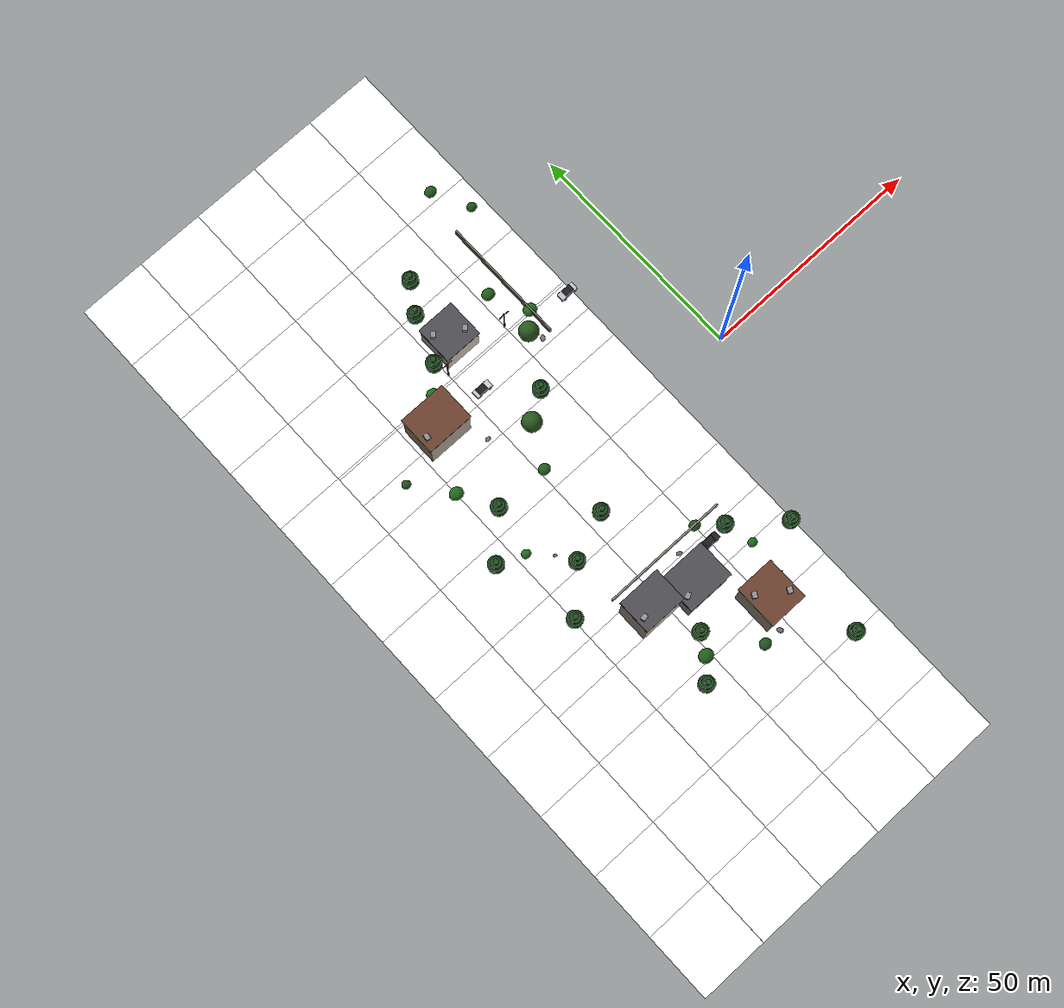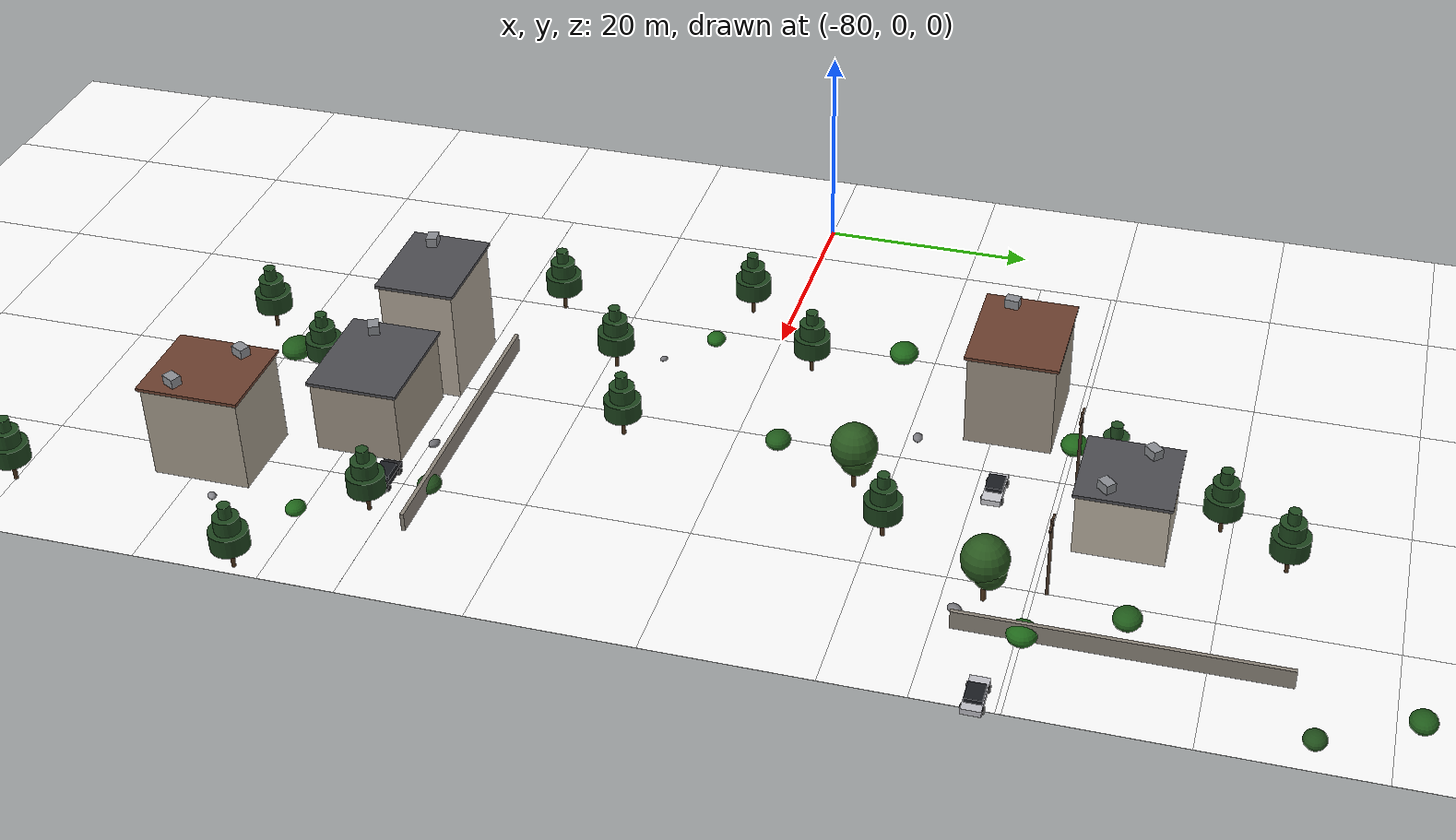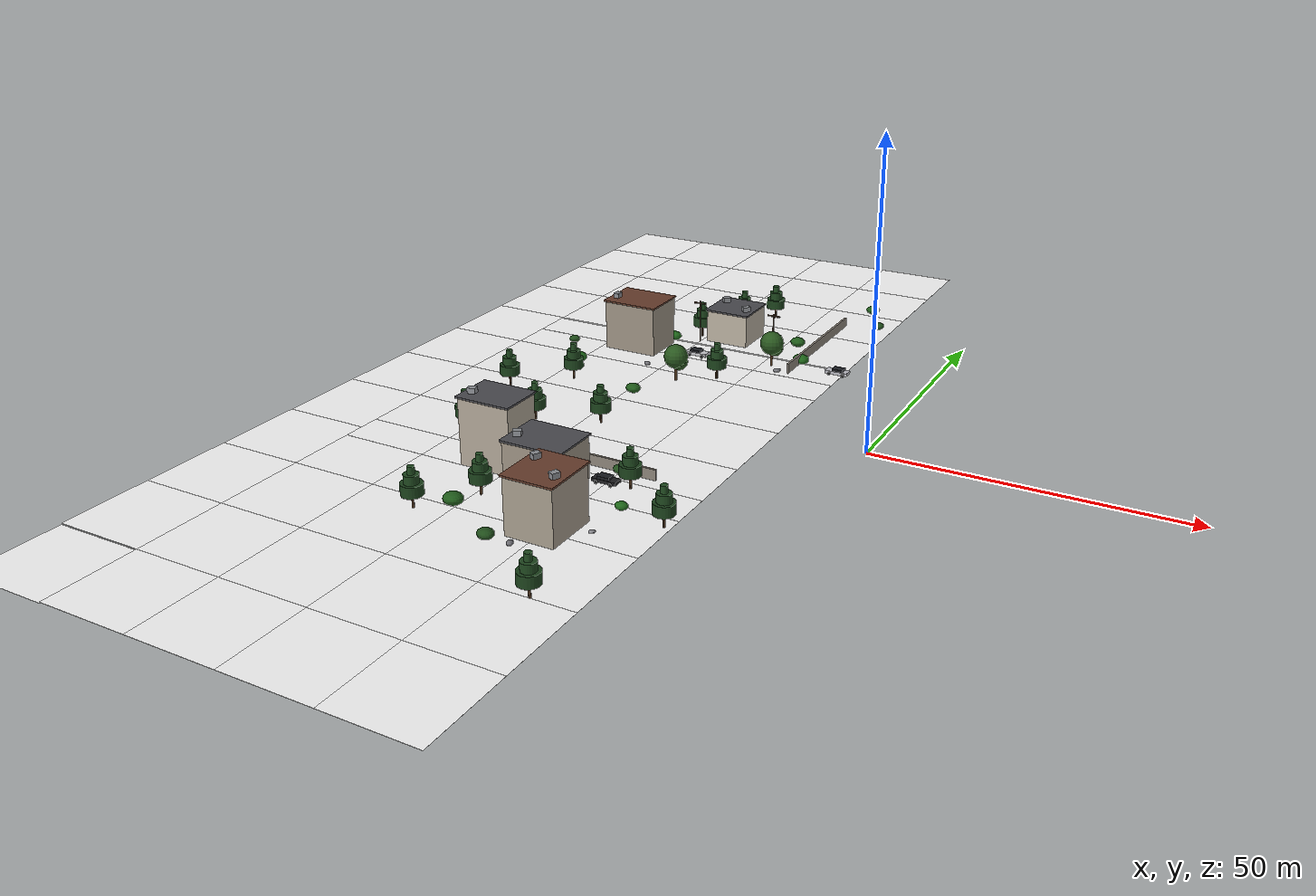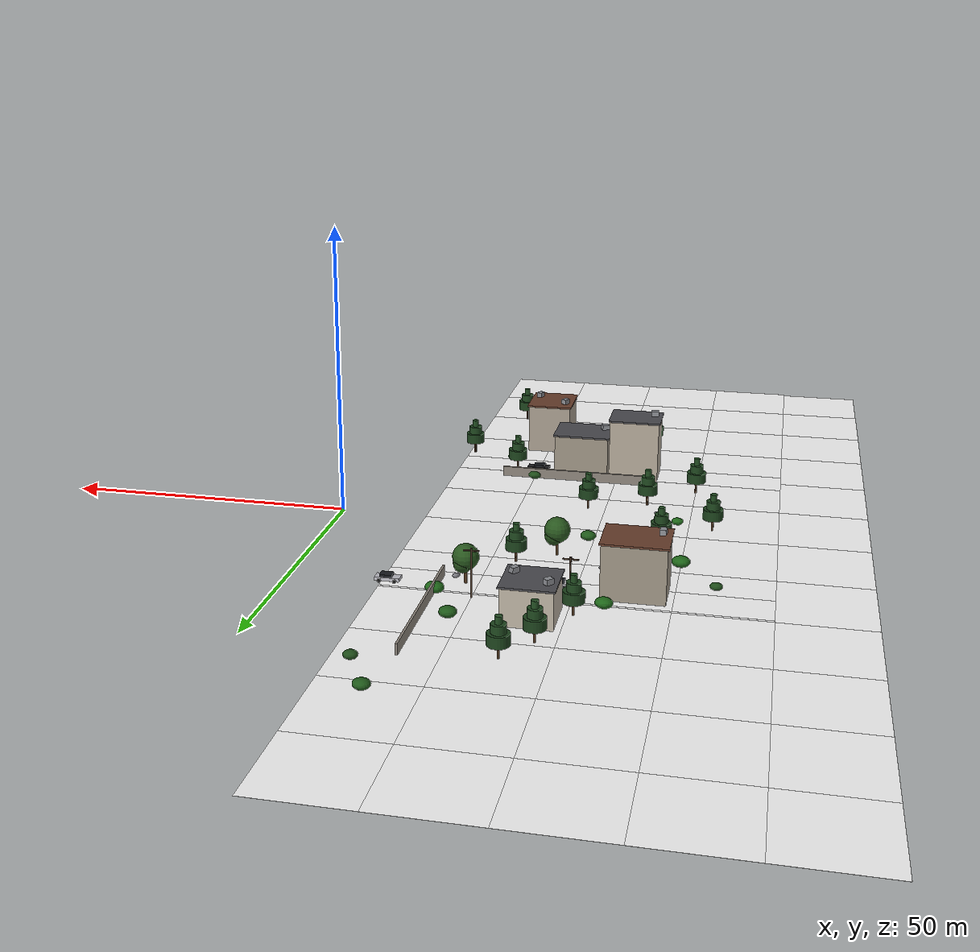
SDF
<sdf version="1.9">
 <world name="iris_runway">
  <model name="ground">
   <static>true</static>
   <link name="link">
    <collision name="c">
     <geometry><plane><normal>0 0 1</normal><size>2000 2000</size></plane></geometry>
    </collision>
   </link>
  </model>
  <include>
   <name>g_0_0</name>
   <pose degrees="true">-82.5 -82.5 0.01 0 0 0</pose>
   <uri>model://grass_tile_worn</uri>
  </include>
  <include>
   <name>g_0_1</name>
   <pose degrees="true">-82.5 -67.5 0.01 0 0 90</pose>
   <uri>model://grass_tile</uri>
  </include>
  <include>
   <name>g_0_2</name>
   <pose degrees="true">-82.5 -52.5 0.01 0 0 270</pose>
   <uri>model://grass_tile</uri>
  </include>
  <include>
   <name>g_0_3</name>
   <pose degrees="true">-82.5 -37.5 0.01 0 0 90</pose>
   <uri>model://grass_tile</uri>
  </include>
  <include>
   <name>g_0_4</name>
   <pose degrees="true">-82.5 -22.5 0.01 0 0 270</pose>
   <uri>model://grass_tile</uri>
  </include>
  <include>
   <name>g_0_5</name>
   <pose degrees="true">-82.5 -7.5 0.01 0 0 90</pose>
   <uri>model://grass_tile</uri>
  </include>
  <include>
   <name>g_0_6</name>
   <pose degrees="true">-82.5 7.5 0.01 0 0 270</pose>
   <uri>model://grass_tile</uri>
  </include>
  <include>
   <name>g_0_7</name>
   <pose degrees="true">-82.5 22.5 0.01 0 0 90</pose>
   <uri>model://grass_tile_worn</uri>
  </include>
  <include>
   <name>g_0_8</name>
   <pose degrees="true">-82.5 37.5 0.01 0 0 270</pose>
   <uri>model://grass_tile</uri>
  </include>
  <include>
   <name>g_0_9</name>
   <pose degrees="true">-82.5 52.5 0.01 0 0 90</pose>
   <uri>model://grass_tile</uri>
  </include>
  <include>
   <name>g_0_10</name>
   <pose degrees="true">-82.5 67.5 0.01 0 0 270</pose>
   <uri>model://grass_tile</uri>
  </include>
  <include>
   <name>g_0_11</name>
   <pose degrees="true">-82.5 82.5 0.01 0 0 90</pose>
   <uri>model://grass_tile</uri>
  </include>
  <include>
   <name>g_1_0</name>
   <pose degrees="true">-67.5 -82.5 0.01 0 0 90</pose>
   <uri>model://grass_tile</uri>
  </include>
  <include>
   <name>g_1_1</name>
   <pose degrees="true">-67.5 -67.5 0.01 0 0 0</pose>
   <uri>model://grass_tile</uri>
  </include>
  <include>
   <name>g_1_2</name>
   <pose degrees="true">-67.5 -52.5 0.01 0 0 180</pose>
   <uri>model://grass_tile</uri>
  </include>
  <include>
   <name>g_1_3</name>
   <pose degrees="true">-67.5 -37.5 0.01 0 0 0</pose>
   <uri>model://grass_tile_worn</uri>
  </include>
  <include>
   <name>g_1_4</name>
   <pose degrees="true">-67.5 -22.5 0.01 0 0 180</pose>
   <uri>model://grass_tile_worn</uri>
  </include>
  <include>
   <name>g_1_5</name>
   <pose degrees="true">-67.5 -7.5 0.01 0 0 0</pose>
   <uri>model://grass_tile_worn</uri>
  </include>
  <include>
   <name>g_1_6</name>
   <pose degrees="true">-67.5 7.5 0.01 0 0 180</pose>
   <uri>model://grass_tile</uri>
  </include>
  <include>
   <name>g_1_7</name>
   <pose degrees="true">-67.5 22.5 0.01 0 0 0</pose>
   <uri>model://grass_tile</uri>
  </include>
  <include>
   <name>g_1_8</name>
   <pose degrees="true">-67.5 37.5 0.01 0 0 180</pose>
   <uri>model://grass_tile</uri>
  </include>
  <include>
   <name>g_1_9</name>
   <pose degrees="true">-67.5 52.5 0.01 0 0 0</pose>
   <uri>model://grass_tile_worn</uri>
  </include>
  <include>
   <name>g_1_10</name>
   <pose degrees="true">-67.5 67.5 0.01 0 0 180</pose>
   <uri>model://grass_tile</uri>
  </include>
  <include>
   <name>g_1_11</name>
   <pose degrees="true">-67.5 82.5 0.01 0 0 0</pose>
   <uri>model://grass_tile</uri>
  </include>
  <include>
   <name>g_2_0</name>
   <pose degrees="true">-52.5 -82.5 0.01 0 0 270</pose>
   <uri>model://grass_tile</uri>
  </include>
  <include>
   <name>g_2_1</name>
   <pose degrees="true">-52.5 -67.5 0.01 0 0 180</pose>
   <uri>model://grass_tile</uri>
  </include>
  <include>
   <name>g_2_2</name>
   <pose degrees="true">-52.5 -52.5 0.01 0 0 0</pose>
   <uri>model://grass_tile</uri>
  </include>
  <include>
   <name>g_2_3</name>
   <pose degrees="true">-52.5 -37.5 0.01 0 0 180</pose>
   <uri>model://grass_tile</uri>
  </include>
  <include>
   <name>g_2_4</name>
   <pose degrees="true">-52.5 -22.5 0.01 0 0 0</pose>
   <uri>model://grass_tile</uri>
  </include>
  <include>
   <name>g_2_5</name>
   <pose degrees="true">-52.5 -7.5 0.01 0 0 180</pose>
   <uri>model://grass_tile</uri>
  </include>
  <include>
   <name>g_2_6</name>
   <pose degrees="true">-52.5 7.5 0.01 0 0 0</pose>
   <uri>model://grass_tile_worn</uri>
  </include>
  <include>
   <name>g_2_7</name>
   <pose degrees="true">-52.5 22.5 0.01 0 0 180</pose>
   <uri>model://grass_tile</uri>
  </include>
  <include>
   <name>g_2_8</name>
   <pose degrees="true">-52.5 37.5 0.01 0 0 0</pose>
   <uri>model://grass_tile_worn</uri>
  </include>
  <include>
   <name>g_2_9</name>
   <pose degrees="true">-52.5 52.5 0.01 0 0 180</pose>
   <uri>model://grass_tile</uri>
  </include>
  <include>
   <name>g_2_10</name>
   <pose degrees="true">-52.5 67.5 0.01 0 0 0</pose>
   <uri>model://grass_tile_worn</uri>
  </include>
  <include>
   <name>g_2_11</name>
   <pose degrees="true">-52.5 82.5 0.01 0 0 180</pose>
   <uri>model://grass_tile</uri>
  </include>
  <include>
   <name>g_3_0</name>
   <pose degrees="true">-37.5 -82.5 0.01 0 0 90</pose>
   <uri>model://grass_tile</uri>
  </include>
  <include>
   <name>g_3_1</name>
   <pose degrees="true">-37.5 -67.5 0.01 0 0 0</pose>
   <uri>model://grass_tile</uri>
  </include>
  <include>
   <name>g_3_2</name>
   <pose degrees="true">-37.5 -52.5 0.01 0 0 180</pose>
   <uri>model://grass_tile</uri>
  </include>
  <include>
   <name>g_3_3</name>
   <pose degrees="true">-37.5 -37.5 0.01 0 0 0</pose>
   <uri>model://grass_tile</uri>
  </include>
  <include>
   <name>g_3_4</name>
   <pose degrees="true">-37.5 -22.5 0.01 0 0 180</pose>
   <uri>model://grass_tile</uri>
  </include>
  <include>
   <name>g_3_5</name>
   <pose degrees="true">-37.5 -7.5 0.01 0 0 0</pose>
   <uri>model://grass_tile</uri>
  </include>
  <include>
   <name>g_3_6</name>
   <pose degrees="true">-37.5 7.5 0.01 0 0 180</pose>
   <uri>model://grass_tile</uri>
  </include>
  <include>
   <name>g_3_7</name>
   <pose degrees="true">-37.5 22.5 0.01 0 0 0</pose>
   <uri>model://grass_tile_worn</uri>
  </include>
  <include>
   <name>g_3_8</name>
   <pose degrees="true">-37.5 37.5 0.01 0 0 180</pose>
   <uri>model://grass_tile</uri>
  </include>
  <include>
   <name>g_3_9</name>
   <pose degrees="true">-37.5 52.5 0.01 0 0 0</pose>
   <uri>model://grass_tile</uri>
  </include>
  <include>
   <name>g_3_10</name>
   <pose degrees="true">-37.5 67.5 0.01 0 0 180</pose>
   <uri>model://grass_tile</uri>
  </include>
  <include>
   <name>g_3_11</name>
   <pose degrees="true">-37.5 82.5 0.01 0 0 0</pose>
   <uri>model://grass_tile</uri>
  </include>
  <include>
   <name>g_4_0</name>
   <pose degrees="true">-22.5 -82.5 0.01 0 0 270</pose>
   <uri>model://grass_tile</uri>
  </include>
  <include>
   <name>g_4_1</name>
   <pose degrees="true">-22.5 -67.5 0.01 0 0 180</pose>
   <uri>model://grass_tile</uri>
  </include>
  <include>
   <name>g_4_2</name>
   <pose degrees="true">-22.5 -52.5 0.01 0 0 0</pose>
   <uri>model://grass_tile</uri>
  </include>
  <include>
   <name>g_4_3</name>
   <pose degrees="true">-22.5 -37.5 0.01 0 0 180</pose>
   <uri>model://grass_tile</uri>
  </include>
  <include>
   <name>g_4_4</name>
   <pose degrees="true">-22.5 -22.5 0.01 0 0 0</pose>
   <uri>model://grass_tile</uri>
  </include>
  <include>
   <name>g_4_5</name>
   <pose degrees="true">-22.5 -7.5 0.01 0 0 180</pose>
   <uri>model://grass_tile</uri>
  </include>
  <include>
   <name>g_4_6</name>
   <pose degrees="true">-22.5 7.5 0.01 0 0 0</pose>
   <uri>model://grass_tile</uri>
  </include>
  <include>
   <name>g_4_7</name>
   <pose degrees="true">-22.5 22.5 0.01 0 0 180</pose>
   <uri>model://grass_tile</uri>
  </include>
  <include>
   <name>g_4_8</name>
   <pose degrees="true">-22.5 37.5 0.01 0 0 0</pose>
   <uri>model://grass_tile</uri>
  </include>
  <include>
   <name>g_4_9</name>
   <pose degrees="true">-22.5 52.5 0.01 0 0 180</pose>
   <uri>model://grass_tile</uri>
  </include>
  <include>
   <name>g_4_10</name>
   <pose degrees="true">-22.5 67.5 0.01 0 0 0</pose>
   <uri>model://grass_tile</uri>
  </include>
  <include>
   <name>g_4_11</name>
   <pose degrees="true">-22.5 82.5 0.01 0 0 180</pose>
   <uri>model://grass_tile</uri>
  </include>
  <include><name>tree_2</name><pose>-28 26 0 0 0 1.4</pose><uri>model://tree_oak</uri></include>
  <include><name>tree_3</name><pose>-26 -28 0 0 0 2.1</pose><uri>model://tree_pine</uri></include>
  <include><name>tree_6</name><pose>-40 12 0 0 0 1.1</pose><uri>model://tree_oak</uri></include>
  <include><name>tree_7</name><pose>-42 -10 0 0 0 1.8</pose><uri>model://tree_pine</uri></include>
  <include><name>tree_11</name><pose>-46 34 0 0 0 1.5</pose><uri>model://tree_pine</uri></include>
  <include><name>tree_13</name><pose>-44 -40 0 0 0 2.9</pose><uri>model://tree_pine</uri></include>
  <include><name>tree_15</name><pose>-56 4 0 0 0 1.2</pose><uri>model://tree_pine</uri></include>
  <include><name>tree_19</name><pose>-60 -22 0 0 0 0.9</pose><uri>model://tree_pine</uri></include>
  <include><name>tree_21</name><pose>-22 -60 0 0 0 2.3</pose><uri>model://tree_pine</uri></include>
  <include><name>tree_23</name><pose>-38 50 0 0 0 0.6</pose><uri>model://tree_pine</uri></include>
  <include><name>tree_25</name><pose>-34 16 0 0 0 2.0</pose><uri>model://tree_pine</uri></include>
  <include><name>tree_27</name><pose>-16 -36 0 0 0 0.3</pose><uri>model://tree_pine</uri></include>
  <include><name>tree_29</name><pose>-52 -14 0 0 0 1.7</pose><uri>model://tree_pine</uri></include>
  <include><name>tree_33</name><pose>-64 -4 0 0 0 1.4</pose><uri>model://tree_pine</uri></include>
  <include><name>tree_37</name><pose>-42 44 0 0 0 1.1</pose><uri>model://tree_pine</uri></include>
  <include><name>tree_39</name><pose>-50 -48 0 0 0 2.5</pose><uri>model://tree_pine</uri></include>
  <model name="bldg_8">
   <static>true</static>
   <pose>-38 -32 0 0 0 0</pose>
   <link name="l">
    <visual name="walls">
     <pose degrees="true">0 0 3.5 0 0 0</pose>
     <geometry><box><size>10 8 7</size></box></geometry>
     <material>
      <ambient>0.34 0.32 0.29 1</ambient>
      <diffuse>0.62 0.58 0.52 1</diffuse>
      <pbr><metal><roughness>0.85</roughness><metalness>0.0</metalness></metal></pbr>
     </material>
    </visual>
    <visual name="roof">
     <pose degrees="true">0 0 7.15 0 0 0</pose>
     <geometry><box><size>10.5 8.5 0.3</size></box></geometry>
     <material>
      <ambient>0.17 0.17 0.18 1</ambient>
      <diffuse>0.30 0.30 0.32 1</diffuse>
      <pbr><metal><roughness>0.9</roughness><metalness>0.0</metalness></metal></pbr>
     </material>
    </visual>
    <collision name="c">
     <pose>0 0 3.65 0 0 0</pose>
     <geometry><box><size>10 8 7.3</size></box></geometry>
    </collision>
    <visual name="ac_0">
     <pose degrees="true">-3.8 -1.6 7.75 0 0 26</pose>
     <geometry><box><size>1.3 1.0 0.9</size></box></geometry>
     <material>
      <ambient>0.30 0.31 0.32 1</ambient>
      <diffuse>0.55 0.56 0.58 1</diffuse>
      <pbr><metal><roughness>0.5</roughness><metalness>0.6</metalness></metal></pbr>
     </material>
    </visual>
   </link>
  </model>
  <model name="bldg_9">
   <static>true</static>
   <pose>-30 -44 0 0 0 0</pose>
   <link name="l">
    <visual name="walls">
     <pose degrees="true">0 0 4.5 0 0 0</pose>
     <geometry><box><size>8 9 9</size></box></geometry>
     <material>
      <ambient>0.36 0.34 0.31 1</ambient>
      <diffuse>0.66 0.62 0.56 1</diffuse>
      <pbr><metal><roughness>0.85</roughness><metalness>0.0</metalness></metal></pbr>
     </material>
    </visual>
    <visual name="roof">
     <pose degrees="true">0 0 9.15 0 0 0</pose>
     <geometry><box><size>8.5 9.5 0.3</size></box></geometry>
     <material>
      <ambient>0.23 0.14 0.10 1</ambient>
      <diffuse>0.42 0.25 0.18 1</diffuse>
      <pbr><metal><roughness>0.9</roughness><metalness>0.0</metalness></metal></pbr>
     </material>
    </visual>
    <collision name="c">
     <pose>0 0 4.65 0 0 0</pose>
     <geometry><box><size>8 9 9.3</size></box></geometry>
    </collision>
    <visual name="ac_0">
     <pose degrees="true">2.8 -1.9 9.75 0 0 63</pose>
     <geometry><box><size>1.3 1.0 0.9</size></box></geometry>
     <material>
      <ambient>0.30 0.31 0.32 1</ambient>
      <diffuse>0.55 0.56 0.58 1</diffuse>
      <pbr><metal><roughness>0.5</roughness><metalness>0.6</metalness></metal></pbr>
     </material>
    </visual>
    <visual name="ac_1">
     <pose degrees="true">-2.8 1.9 9.75 0 0 63</pose>
     <geometry><box><size>1.3 1.0 0.9</size></box></geometry>
     <material>
      <ambient>0.30 0.31 0.32 1</ambient>
      <diffuse>0.55 0.56 0.58 1</diffuse>
      <pbr><metal><roughness>0.5</roughness><metalness>0.6</metalness></metal></pbr>
     </material>
    </visual>
   </link>
  </model>
  <model name="bldg_10">
   <static>true</static>
   <pose>-48 -30 0 0 0 0</pose>
   <link name="l">
    <visual name="walls">
     <pose degrees="true">0 0 5.5 0 0 0</pose>
     <geometry><box><size>9 7 11</size></box></geometry>
     <material>
      <ambient>0.39 0.36 0.33 1</ambient>
      <diffuse>0.70 0.66 0.60 1</diffuse>
      <pbr><metal><roughness>0.85</roughness><metalness>0.0</metalness></metal></pbr>
     </material>
    </visual>
    <visual name="roof">
     <pose degrees="true">0 0 11.15 0 0 0</pose>
     <geometry><box><size>9.5 7.5 0.3</size></box></geometry>
     <material>
      <ambient>0.17 0.17 0.18 1</ambient>
      <diffuse>0.30 0.30 0.32 1</diffuse>
      <pbr><metal><roughness>0.9</roughness><metalness>0.0</metalness></metal></pbr>
     </material>
    </visual>
    <collision name="c">
     <pose>0 0 5.65 0 0 0</pose>
     <geometry><box><size>9 7 11.3</size></box></geometry>
    </collision>
    <visual name="ac_0">
     <pose degrees="true">-3.3 -1.3 11.75 0 0 10</pose>
     <geometry><box><size>1.3 1.0 0.9</size></box></geometry>
     <material>
      <ambient>0.30 0.31 0.32 1</ambient>
      <diffuse>0.55 0.56 0.58 1</diffuse>
      <pbr><metal><roughness>0.5</roughness><metalness>0.6</metalness></metal></pbr>
     </material>
    </visual>
   </link>
  </model>
  <model name="bldg_11">
   <static>true</static>
   <pose>-40 36 0 0 0 0</pose>
   <link name="l">
    <visual name="walls">
     <pose degrees="true">0 0 3.0 0 0 0</pose>
     <geometry><box><size>8 8 6</size></box></geometry>
     <material>
      <ambient>0.41 0.39 0.35 1</ambient>
      <diffuse>0.74 0.70 0.64 1</diffuse>
      <pbr><metal><roughness>0.85</roughness><metalness>0.0</metalness></metal></pbr>
     </material>
    </visual>
    <visual name="roof">
     <pose degrees="true">0 0 6.15 0 0 0</pose>
     <geometry><box><size>8.5 8.5 0.3</size></box></geometry>
     <material>
      <ambient>0.17 0.17 0.18 1</ambient>
      <diffuse>0.30 0.30 0.32 1</diffuse>
      <pbr><metal><roughness>0.9</roughness><metalness>0.0</metalness></metal></pbr>
     </material>
    </visual>
    <collision name="c">
     <pose>0 0 3.15 0 0 0</pose>
     <geometry><box><size>8 8 6.3</size></box></geometry>
    </collision>
    <visual name="ac_0">
     <pose degrees="true">2.8 -1.6 6.75 0 0 47</pose>
     <geometry><box><size>1.3 1.0 0.9</size></box></geometry>
     <material>
      <ambient>0.30 0.31 0.32 1</ambient>
      <diffuse>0.55 0.56 0.58 1</diffuse>
      <pbr><metal><roughness>0.5</roughness><metalness>0.6</metalness></metal></pbr>
     </material>
    </visual>
    <visual name="ac_1">
     <pose degrees="true">-2.8 1.6 6.75 0 0 47</pose>
     <geometry><box><size>1.3 1.0 0.9</size></box></geometry>
     <material>
      <ambient>0.30 0.31 0.32 1</ambient>
      <diffuse>0.55 0.56 0.58 1</diffuse>
      <pbr><metal><roughness>0.5</roughness><metalness>0.6</metalness></metal></pbr>
     </material>
    </visual>
   </link>
  </model>
  <model name="bldg_12">
   <static>true</static>
   <pose>-54 24 0 0 0 0</pose>
   <link name="l">
    <visual name="walls">
     <pose degrees="true">0 0 4.5 0 0 0</pose>
     <geometry><box><size>10 8 9</size></box></geometry>
     <material>
      <ambient>0.34 0.32 0.29 1</ambient>
      <diffuse>0.62 0.58 0.52 1</diffuse>
      <pbr><metal><roughness>0.85</roughness><metalness>0.0</metalness></metal></pbr>
     </material>
    </visual>
    <visual name="roof">
     <pose degrees="true">0 0 9.15 0 0 0</pose>
     <geometry><box><size>10.5 8.5 0.3</size></box></geometry>
     <material>
      <ambient>0.23 0.14 0.10 1</ambient>
      <diffuse>0.42 0.25 0.18 1</diffuse>
      <pbr><metal><roughness>0.9</roughness><metalness>0.0</metalness></metal></pbr>
     </material>
    </visual>
    <collision name="c">
     <pose>0 0 4.65 0 0 0</pose>
     <geometry><box><size>10 8 9.3</size></box></geometry>
    </collision>
    <visual name="ac_0">
     <pose degrees="true">-3.8 -1.6 9.75 0 0 84</pose>
     <geometry><box><size>1.3 1.0 0.9</size></box></geometry>
     <material>
      <ambient>0.30 0.31 0.32 1</ambient>
      <diffuse>0.55 0.56 0.58 1</diffuse>
      <pbr><metal><roughness>0.5</roughness><metalness>0.6</metalness></metal></pbr>
     </material>
    </visual>
   </link>
  </model>
  <model name="pole_0">
   <static>true</static>
   <pose>-45 31 0 0 0 0</pose>
   <link name="l">
    <visual name="p">
     <pose>0 0 4 0 0 0</pose>
     <geometry><cylinder><radius>0.14</radius><length>8</length></cylinder></geometry>
     <material>
      <ambient>0.17 0.12 0.09 1</ambient>
      <diffuse>0.30 0.22 0.16 1</diffuse>
      <pbr><metal><roughness>0.95</roughness><metalness>0.0</metalness></metal></pbr>
     </material>
    </visual>
    <visual name="bar">
     <pose degrees="true">0 0 7.6 0 0 0</pose>
     <geometry><box><size>2.4 0.18 0.18</size></box></geometry>
     <material>
      <ambient>0.17 0.12 0.09 1</ambient>
      <diffuse>0.30 0.22 0.16 1</diffuse>
      <pbr><metal><roughness>0.95</roughness><metalness>0.0</metalness></metal></pbr>
     </material>
    </visual>
    <collision name="c">
     <pose>0 0 4 0 0 0</pose>
     <geometry><cylinder><radius>0.2</radius><length>8</length></cylinder></geometry>
    </collision>
   </link>
  </model>
  <model name="pole_1">
   <static>true</static>
   <pose>-30 31 0 0 0 0</pose>
   <link name="l">
    <visual name="p">
     <pose>0 0 4 0 0 0</pose>
     <geometry><cylinder><radius>0.14</radius><length>8</length></cylinder></geometry>
     <material>
      <ambient>0.17 0.12 0.09 1</ambient>
      <diffuse>0.30 0.22 0.16 1</diffuse>
      <pbr><metal><roughness>0.95</roughness><metalness>0.0</metalness></metal></pbr>
     </material>
    </visual>
    <visual name="bar">
     <pose degrees="true">0 0 7.6 0 0 0</pose>
     <geometry><box><size>2.4 0.18 0.18</size></box></geometry>
     <material>
      <ambient>0.17 0.12 0.09 1</ambient>
      <diffuse>0.30 0.22 0.16 1</diffuse>
      <pbr><metal><roughness>0.95</roughness><metalness>0.0</metalness></metal></pbr>
     </material>
    </visual>
    <collision name="c">
     <pose>0 0 4 0 0 0</pose>
     <geometry><cylinder><radius>0.2</radius><length>8</length></cylinder></geometry>
    </collision>
   </link>
  </model>
  <model name="wall_0">
   <static>true</static>
   <pose degrees="true">-38 -24 0 0 0 0</pose>
   <link name="l">
    <visual name="w">
     <pose degrees="true">0 0 0.9 0 0 0</pose>
     <geometry><box><size>28 0.35 1.8</size></box></geometry>
     <material>
      <ambient>0.30 0.29 0.26 1</ambient>
      <diffuse>0.55 0.52 0.48 1</diffuse>
      <pbr><metal><roughness>0.95</roughness><metalness>0.0</metalness></metal></pbr>
     </material>
    </visual>
    <collision name="c">
     <pose>0 0 0.9 0 0 0</pose>
     <geometry><box><size>28 0.35 1.8</size></box></geometry>
    </collision>
   </link>
  </model>
  <model name="wall_1">
   <static>true</static>
   <pose degrees="true">-24 38 0 0 0 90</pose>
   <link name="l">
    <visual name="w">
     <pose degrees="true">0 0 0.9 0 0 0</pose>
     <geometry><box><size>28 0.35 1.8</size></box></geometry>
     <material>
      <ambient>0.30 0.29 0.26 1</ambient>
      <diffuse>0.55 0.52 0.48 1</diffuse>
      <pbr><metal><roughness>0.95</roughness><metalness>0.0</metalness></metal></pbr>
     </material>
    </visual>
    <collision name="c">
     <pose>0 0 0.9 0 0 0</pose>
     <geometry><box><size>28 0.35 1.8</size></box></geometry>
    </collision>
   </link>
  </model>
  <include>
   <name>road_0_0</name>
   <pose degrees="true">-67.5 26.0 0.020 0 0 0</pose>
   <uri>model://road_tile</uri>
  </include>
  <include>
   <name>road_0_1</name>
   <pose degrees="true">-52.5 26.0 0.020 0 0 0</pose>
   <uri>model://road_tile</uri>
  </include>
  <include>
   <name>road_0_2</name>
   <pose degrees="true">-37.5 26.0 0.020 0 0 0</pose>
   <uri>model://road_tile</uri>
  </include>
  <include>
   <name>road_0_3</name>
   <pose degrees="true">-22.5 26.0 0.020 0 0 0</pose>
   <uri>model://road_tile</uri>
  </include>
  <include>
   <name>road_1_0</name>
   <pose degrees="true">-67.5 -30.0 0.021 0 0 0</pose>
   <uri>model://road_tile</uri>
  </include>
  <include>
   <name>road_1_1</name>
   <pose degrees="true">-52.5 -30.0 0.021 0 0 0</pose>
   <uri>model://road_tile</uri>
  </include>
  <include>
   <name>road_1_2</name>
   <pose degrees="true">-37.5 -30.0 0.021 0 0 0</pose>
   <uri>model://road_tile</uri>
  </include>
  <include>
   <name>road_1_3</name>
   <pose degrees="true">-22.5 -30.0 0.021 0 0 0</pose>
   <uri>model://road_tile</uri>
  </include>
  <model name="car_1">
   <static>true</static>
   <pose degrees="true">-16 27.75 0 0 0 180</pose>
   <link name="l">
    <visual name="body">
     <pose degrees="true">0 0 0.55 0 0 0</pose>
     <geometry><box><size>4.0 1.7 0.55</size></box></geometry>
     <material>
      <ambient>0.41 0.41 0.43 1</ambient>
      <diffuse>0.75 0.75 0.78 1</diffuse>
      <pbr><metal><roughness>0.35</roughness><metalness>0.3</metalness></metal></pbr>
     </material>
    </visual>
    <visual name="cabin">
     <pose degrees="true">-0.2 0 1.02 0 0 0</pose>
     <geometry><box><size>2.0 1.5 0.45</size></box></geometry>
     <material>
      <ambient>0.06 0.06 0.07 1</ambient>
      <diffuse>0.10 0.11 0.13 1</diffuse>
      <pbr><metal><roughness>0.25</roughness><metalness>0.2</metalness></metal></pbr>
     </material>
    </visual>
    <visual name="w0">
     <pose>1.25 0.85 0.32 1.5708 0 0</pose>
     <geometry><cylinder><radius>0.32</radius><length>0.24</length></cylinder></geometry>
     <material>
      <ambient>0.04 0.04 0.04 1</ambient>
      <diffuse>0.08 0.08 0.08 1</diffuse>
      <pbr><metal><roughness>0.95</roughness><metalness>0.0</metalness></metal></pbr>
     </material>
    </visual>
    <visual name="w1">
     <pose>1.25 -0.85 0.32 1.5708 0 0</pose>
     <geometry><cylinder><radius>0.32</radius><length>0.24</length></cylinder></geometry>
     <material>
      <ambient>0.04 0.04 0.04 1</ambient>
      <diffuse>0.08 0.08 0.08 1</diffuse>
      <pbr><metal><roughness>0.95</roughness><metalness>0.0</metalness></metal></pbr>
     </material>
    </visual>
    <visual name="w2">
     <pose>-1.25 0.85 0.32 1.5708 0 0</pose>
     <geometry><cylinder><radius>0.32</radius><length>0.24</length></cylinder></geometry>
     <material>
      <ambient>0.04 0.04 0.04 1</ambient>
      <diffuse>0.08 0.08 0.08 1</diffuse>
      <pbr><metal><roughness>0.95</roughness><metalness>0.0</metalness></metal></pbr>
     </material>
    </visual>
    <visual name="w3">
     <pose>-1.25 -0.85 0.32 1.5708 0 0</pose>
     <geometry><cylinder><radius>0.32</radius><length>0.24</length></cylinder></geometry>
     <material>
      <ambient>0.04 0.04 0.04 1</ambient>
      <diffuse>0.08 0.08 0.08 1</diffuse>
      <pbr><metal><roughness>0.95</roughness><metalness>0.0</metalness></metal></pbr>
     </material>
    </visual>
   </link>
  </model>
  <model name="car_3">
   <static>true</static>
   <pose degrees="true">-30 -28.25 0 0 0 0</pose>
   <link name="l">
    <visual name="body">
     <pose degrees="true">0 0 0.55 0 0 0</pose>
     <geometry><box><size>4.0 1.7 0.55</size></box></geometry>
     <material>
      <ambient>0.07 0.07 0.07 1</ambient>
      <diffuse>0.12 0.12 0.13 1</diffuse>
      <pbr><metal><roughness>0.35</roughness><metalness>0.3</metalness></metal></pbr>
     </material>
    </visual>
    <visual name="cabin">
     <pose degrees="true">-0.2 0 1.02 0 0 0</pose>
     <geometry><box><size>2.0 1.5 0.45</size></box></geometry>
     <material>
      <ambient>0.06 0.06 0.07 1</ambient>
      <diffuse>0.10 0.11 0.13 1</diffuse>
      <pbr><metal><roughness>0.25</roughness><metalness>0.2</metalness></metal></pbr>
     </material>
    </visual>
    <visual name="w0">
     <pose>1.25 0.85 0.32 1.5708 0 0</pose>
     <geometry><cylinder><radius>0.32</radius><length>0.24</length></cylinder></geometry>
     <material>
      <ambient>0.04 0.04 0.04 1</ambient>
      <diffuse>0.08 0.08 0.08 1</diffuse>
      <pbr><metal><roughness>0.95</roughness><metalness>0.0</metalness></metal></pbr>
     </material>
    </visual>
    <visual name="w1">
     <pose>1.25 -0.85 0.32 1.5708 0 0</pose>
     <geometry><cylinder><radius>0.32</radius><length>0.24</length></cylinder></geometry>
     <material>
      <ambient>0.04 0.04 0.04 1</ambient>
      <diffuse>0.08 0.08 0.08 1</diffuse>
      <pbr><metal><roughness>0.95</roughness><metalness>0.0</metalness></metal></pbr>
     </material>
    </visual>
    <visual name="w2">
     <pose>-1.25 0.85 0.32 1.5708 0 0</pose>
     <geometry><cylinder><radius>0.32</radius><length>0.24</length></cylinder></geometry>
     <material>
      <ambient>0.04 0.04 0.04 1</ambient>
      <diffuse>0.08 0.08 0.08 1</diffuse>
      <pbr><metal><roughness>0.95</roughness><metalness>0.0</metalness></metal></pbr>
     </material>
    </visual>
    <visual name="w3">
     <pose>-1.25 -0.85 0.32 1.5708 0 0</pose>
     <geometry><cylinder><radius>0.32</radius><length>0.24</length></cylinder></geometry>
     <material>
      <ambient>0.04 0.04 0.04 1</ambient>
      <diffuse>0.08 0.08 0.08 1</diffuse>
      <pbr><metal><roughness>0.95</roughness><metalness>0.0</metalness></metal></pbr>
     </material>
    </visual>
   </link>
  </model>
  <model name="car_7">
   <static>true</static>
   <pose degrees="true">-42 24.25 0 0 0 0</pose>
   <link name="l">
    <visual name="body">
     <pose degrees="true">0 0 0.55 0 0 0</pose>
     <geometry><box><size>4.0 1.7 0.55</size></box></geometry>
     <material>
      <ambient>0.44 0.44 0.45 1</ambient>
      <diffuse>0.80 0.80 0.82 1</diffuse>
      <pbr><metal><roughness>0.35</roughness><metalness>0.3</metalness></metal></pbr>
     </material>
    </visual>
    <visual name="cabin">
     <pose degrees="true">-0.2 0 1.02 0 0 0</pose>
     <geometry><box><size>2.0 1.5 0.45</size></box></geometry>
     <material>
      <ambient>0.06 0.06 0.07 1</ambient>
      <diffuse>0.10 0.11 0.13 1</diffuse>
      <pbr><metal><roughness>0.25</roughness><metalness>0.2</metalness></metal></pbr>
     </material>
    </visual>
    <visual name="w0">
     <pose>1.25 0.85 0.32 1.5708 0 0</pose>
     <geometry><cylinder><radius>0.32</radius><length>0.24</length></cylinder></geometry>
     <material>
      <ambient>0.04 0.04 0.04 1</ambient>
      <diffuse>0.08 0.08 0.08 1</diffuse>
      <pbr><metal><roughness>0.95</roughness><metalness>0.0</metalness></metal></pbr>
     </material>
    </visual>
    <visual name="w1">
     <pose>1.25 -0.85 0.32 1.5708 0 0</pose>
     <geometry><cylinder><radius>0.32</radius><length>0.24</length></cylinder></geometry>
     <material>
      <ambient>0.04 0.04 0.04 1</ambient>
      <diffuse>0.08 0.08 0.08 1</diffuse>
      <pbr><metal><roughness>0.95</roughness><metalness>0.0</metalness></metal></pbr>
     </material>
    </visual>
    <visual name="w2">
     <pose>-1.25 0.85 0.32 1.5708 0 0</pose>
     <geometry><cylinder><radius>0.32</radius><length>0.24</length></cylinder></geometry>
     <material>
      <ambient>0.04 0.04 0.04 1</ambient>
      <diffuse>0.08 0.08 0.08 1</diffuse>
      <pbr><metal><roughness>0.95</roughness><metalness>0.0</metalness></metal></pbr>
     </material>
    </visual>
    <visual name="w3">
     <pose>-1.25 -0.85 0.32 1.5708 0 0</pose>
     <geometry><cylinder><radius>0.32</radius><length>0.24</length></cylinder></geometry>
     <material>
      <ambient>0.04 0.04 0.04 1</ambient>
      <diffuse>0.08 0.08 0.08 1</diffuse>
      <pbr><metal><roughness>0.95</roughness><metalness>0.0</metalness></metal></pbr>
     </material>
    </visual>
   </link>
  </model>
  <model name="bush_2">
   <static>true</static>
   <pose>-24 30 0.68 0 0 0</pose>
   <link name="l">
    <visual name="v">
     <geometry><ellipsoid><radii>1.5 1.35 0.90</radii></ellipsoid></geometry>
     <material>
      <ambient>0.07 0.22 0.06 1</ambient>
      <diffuse>0.12 0.40 0.10 1</diffuse>
      <pbr><metal><roughness>0.95</roughness><metalness>0.0</metalness></metal></pbr>
     </material>
    </visual>
   </link>
  </model>
  <model name="bush_3">
   <static>true</static>
   <pose>-30 -24 0.54 0 0 0</pose>
   <link name="l">
    <visual name="v">
     <geometry><ellipsoid><radii>1.2 1.08 0.72</radii></ellipsoid></geometry>
     <material>
      <ambient>0.07 0.17 0.06 1</ambient>
      <diffuse>0.12 0.30 0.10 1</diffuse>
      <pbr><metal><roughness>0.95</roughness><metalness>0.0</metalness></metal></pbr>
     </material>
    </visual>
   </link>
  </model>
  <model name="bush_5">
   <static>true</static>
   <pose>-24 -34 0.45 0 0 0</pose>
   <link name="l">
    <visual name="v">
     <geometry><ellipsoid><radii>1.0 0.90 0.60</radii></ellipsoid></geometry>
     <material>
      <ambient>0.07 0.22 0.06 1</ambient>
      <diffuse>0.12 0.40 0.10 1</diffuse>
      <pbr><metal><roughness>0.95</roughness><metalness>0.0</metalness></metal></pbr>
     </material>
    </visual>
   </link>
  </model>
  <model name="bush_7">
   <static>true</static>
   <pose>-44 4 0.59 0 0 0</pose>
   <link name="l">
    <visual name="v">
     <geometry><ellipsoid><radii>1.3 1.17 0.78</radii></ellipsoid></geometry>
     <material>
      <ambient>0.07 0.19 0.06 1</ambient>
      <diffuse>0.12 0.35 0.10 1</diffuse>
      <pbr><metal><roughness>0.95</roughness><metalness>0.0</metalness></metal></pbr>
     </material>
    </visual>
   </link>
  </model>
  <model name="bush_11">
   <static>true</static>
   <pose>-50 30 0.63 0 0 0</pose>
   <link name="l">
    <visual name="v">
     <geometry><ellipsoid><radii>1.4 1.26 0.84</radii></ellipsoid></geometry>
     <material>
      <ambient>0.07 0.22 0.06 1</ambient>
      <diffuse>0.12 0.40 0.10 1</diffuse>
      <pbr><metal><roughness>0.95</roughness><metalness>0.0</metalness></metal></pbr>
     </material>
    </visual>
   </link>
  </model>
  <model name="bush_13">
   <static>true</static>
   <pose>-46 -44 0.72 0 0 0</pose>
   <link name="l">
    <visual name="v">
     <geometry><ellipsoid><radii>1.6 1.44 0.96</radii></ellipsoid></geometry>
     <material>
      <ambient>0.07 0.19 0.06 1</ambient>
      <diffuse>0.12 0.35 0.10 1</diffuse>
      <pbr><metal><roughness>0.95</roughness><metalness>0.0</metalness></metal></pbr>
     </material>
    </visual>
   </link>
  </model>
  <model name="bush_15">
   <static>true</static>
   <pose>-18 54 0.50 0 0 0</pose>
   <link name="l">
    <visual name="v">
     <geometry><ellipsoid><radii>1.1 0.99 0.66</radii></ellipsoid></geometry>
     <material>
      <ambient>0.07 0.17 0.06 1</ambient>
      <diffuse>0.12 0.30 0.10 1</diffuse>
      <pbr><metal><roughness>0.95</roughness><metalness>0.0</metalness></metal></pbr>
     </material>
    </visual>
   </link>
  </model>
  <model name="bush_17">
   <static>true</static>
   <pose>-58 -6 0.45 0 0 0</pose>
   <link name="l">
    <visual name="v">
     <geometry><ellipsoid><radii>1.0 0.90 0.60</radii></ellipsoid></geometry>
     <material>
      <ambient>0.07 0.22 0.06 1</ambient>
      <diffuse>0.12 0.40 0.10 1</diffuse>
      <pbr><metal><roughness>0.95</roughness><metalness>0.0</metalness></metal></pbr>
     </material>
    </visual>
   </link>
  </model>
  <model name="bush_19">
   <static>true</static>
   <pose>-28 38 0.63 0 0 0</pose>
   <link name="l">
    <visual name="v">
     <geometry><ellipsoid><radii>1.4 1.26 0.84</radii></ellipsoid></geometry>
     <material>
      <ambient>0.07 0.19 0.06 1</ambient>
      <diffuse>0.12 0.35 0.10 1</diffuse>
      <pbr><metal><roughness>0.95</roughness><metalness>0.0</metalness></metal></pbr>
     </material>
    </visual>
   </link>
  </model>
  <model name="bush_21">
   <static>true</static>
   <pose>-36 -50 0.59 0 0 0</pose>
   <link name="l">
    <visual name="v">
     <geometry><ellipsoid><radii>1.3 1.17 0.78</radii></ellipsoid></geometry>
     <material>
      <ambient>0.07 0.17 0.06 1</ambient>
      <diffuse>0.12 0.30 0.10 1</diffuse>
      <pbr><metal><roughness>0.95</roughness><metalness>0.0</metalness></metal></pbr>
     </material>
    </visual>
   </link>
  </model>
  <model name="bush_23">
   <static>true</static>
   <pose>-60 12 0.68 0 0 0</pose>
   <link name="l">
    <visual name="v">
     <geometry><ellipsoid><radii>1.5 1.35 0.90</radii></ellipsoid></geometry>
     <material>
      <ambient>0.07 0.22 0.06 1</ambient>
      <diffuse>0.12 0.40 0.10 1</diffuse>
      <pbr><metal><roughness>0.95</roughness><metalness>0.0</metalness></metal></pbr>
     </material>
    </visual>
   </link>
  </model>
  <model name="bush_25">
   <static>true</static>
   <pose>-22 62 0.59 0 0 0</pose>
   <link name="l">
    <visual name="v">
     <geometry><ellipsoid><radii>1.3 1.17 0.78</radii></ellipsoid></geometry>
     <material>
      <ambient>0.07 0.19 0.06 1</ambient>
      <diffuse>0.12 0.35 0.10 1</diffuse>
      <pbr><metal><roughness>0.95</roughness><metalness>0.0</metalness></metal></pbr>
     </material>
    </visual>
   </link>
  </model>
  <model name="bush_27">
   <static>true</static>
   <pose>-66 20 0.45 0 0 0</pose>
   <link name="l">
    <visual name="v">
     <geometry><ellipsoid><radii>1.0 0.90 0.60</radii></ellipsoid></geometry>
     <material>
      <ambient>0.07 0.17 0.06 1</ambient>
      <diffuse>0.12 0.30 0.10 1</diffuse>
      <pbr><metal><roughness>0.95</roughness><metalness>0.0</metalness></metal></pbr>
     </material>
    </visual>
   </link>
  </model>
  <model name="rock_1">
   <static>true</static>
   <pose degrees="true">-26 24 0.24 0 0 53</pose>
   <link name="l">
    <visual name="v">
     <geometry><ellipsoid><radii>0.7 0.52 0.35</radii></ellipsoid></geometry>
     <material>
      <ambient>0.26 0.26 0.27 1</ambient>
      <diffuse>0.47 0.47 0.49 1</diffuse>
      <pbr><metal><roughness>0.98</roughness><metalness>0.0</metalness></metal></pbr>
     </material>
    </visual>
   </link>
  </model>
  <model name="rock_3">
   <static>true</static>
   <pose degrees="true">-36 -26 0.21 0 0 159</pose>
   <link name="l">
    <visual name="v">
     <geometry><ellipsoid><radii>0.6 0.45 0.30</radii></ellipsoid></geometry>
     <material>
      <ambient>0.23 0.23 0.24 1</ambient>
      <diffuse>0.42 0.42 0.44 1</diffuse>
      <pbr><metal><roughness>0.98</roughness><metalness>0.0</metalness></metal></pbr>
     </material>
    </visual>
   </link>
  </model>
  <model name="rock_7">
   <static>true</static>
   <pose degrees="true">-48 16 0.21 0 0 11</pose>
   <link name="l">
    <visual name="v">
     <geometry><ellipsoid><radii>0.6 0.45 0.30</radii></ellipsoid></geometry>
     <material>
      <ambient>0.26 0.26 0.27 1</ambient>
      <diffuse>0.47 0.47 0.49 1</diffuse>
      <pbr><metal><roughness>0.98</roughness><metalness>0.0</metalness></metal></pbr>
     </material>
    </visual>
   </link>
  </model>
  <model name="rock_9">
   <static>true</static>
   <pose degrees="true">-32 -50 0.24 0 0 117</pose>
   <link name="l">
    <visual name="v">
     <geometry><ellipsoid><radii>0.7 0.52 0.35</radii></ellipsoid></geometry>
     <material>
      <ambient>0.23 0.23 0.24 1</ambient>
      <diffuse>0.42 0.42 0.44 1</diffuse>
      <pbr><metal><roughness>0.98</roughness><metalness>0.0</metalness></metal></pbr>
     </material>
    </visual>
   </link>
  </model>
  <model name="rock_11">
   <static>true</static>
   <pose degrees="true">-24 -42 0.17 0 0 43</pose>
   <link name="l">
    <visual name="v">
     <geometry><ellipsoid><radii>0.5 0.38 0.25</radii></ellipsoid></geometry>
     <material>
      <ambient>0.29 0.29 0.30 1</ambient>
      <diffuse>0.52 0.52 0.54 1</diffuse>
      <pbr><metal><roughness>0.98</roughness><metalness>0.0</metalness></metal></pbr>
     </material>
    </visual>
   </link>
  </model>
  <model name="rock_13">
   <static>true</static>
   <pose degrees="true">-54 -10 0.14 0 0 149</pose>
   <link name="l">
    <visual name="v">
     <geometry><ellipsoid><radii>0.4 0.30 0.20</radii></ellipsoid></geometry>
     <material>
      <ambient>0.26 0.26 0.27 1</ambient>
      <diffuse>0.47 0.47 0.49 1</diffuse>
      <pbr><metal><roughness>0.98</roughness><metalness>0.0</metalness></metal></pbr>
     </material>
    </visual>
   </link>
  </model>
 </world>
</sdf>
